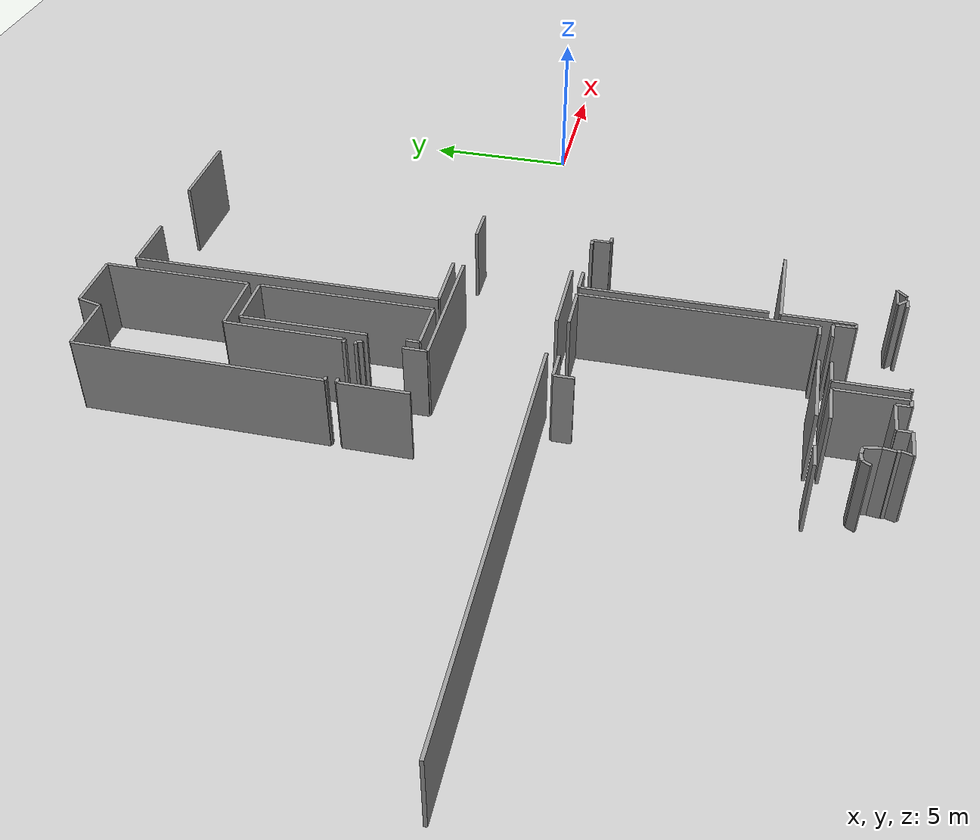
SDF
<sdf version="1.6">
 <world name="default">
  <model name="ground_plane">
   <static>1</static>
   <link name="link">
    <collision name="collision">
     <geometry><plane><normal>0 0 1</normal><size>100 100</size></plane></geometry>
     <surface><friction><ode><mu>100</mu><mu2>50</mu2></ode></friction></surface>
    </collision>
    <visual name="visual">
     <cast_shadows>0</cast_shadows>
     <geometry><plane><normal>0 0 1</normal><size>100 100</size></plane></geometry>
     <material>
      <script><uri>file://media/materials/scripts/gazebo.material</uri><name>Gazebo/Grey</name></script>
     </material>
    </visual>
   </link>
  </model>
  <model name="0510034689_Layout1">
   <static>1</static>
   <link name="Wall_89">
    <collision name="Wall_89_Collision">
     <geometry><box><size>2.1591444138 0.1 2.5</size></box></geometry>
     <pose>1.0795722069 0 1.25 0 0 0</pose>
    </collision>
    <visual name="Wall_89_Visual">
     <pose>1.0795722069 0 1.25 0 0 0</pose>
     <geometry><box><size>2.1591444138 0.1 2.5</size></box></geometry>
     <material>
      <script><uri>file://media/materials/scripts/gazebo.material</uri><name>Gazebo/Grey</name></script>
      <ambient>1 1 1 1</ambient>
     </material>
    </visual>
    <pose>39.2367038052 -11.0451030584 0 0 0 1.57079632679</pose>
   </link>
   <link name="Wall_90">
    <collision name="Wall_90_Collision">
     <geometry><box><size>0.170061336301 0.1 2.5</size></box></geometry>
     <pose>0.0850306681507 0 1.25 0 0 0</pose>
    </collision>
    <visual name="Wall_90_Visual">
     <pose>0.0850306681507 0 1.25 0 0 0</pose>
     <geometry><box><size>0.170061336301 0.1 2.5</size></box></geometry>
     <material>
      <script><uri>file://media/materials/scripts/gazebo.material</uri><name>Gazebo/Grey</name></script>
      <ambient>1 1 1 1</ambient>
     </material>
    </visual>
    <pose>39.2367038052 -8.88595864464 0 0 0 0.0</pose>
   </link>
   <link name="Wall_91">
    <collision name="Wall_91_Collision">
     <geometry><box><size>0.145186693081 0.1 2.5</size></box></geometry>
     <pose>0.0725933465406 0 1.25 0 0 0</pose>
    </collision>
    <visual name="Wall_91_Visual">
     <pose>0.0725933465406 0 1.25 0 0 0</pose>
     <geometry><box><size>0.145186693081 0.1 2.5</size></box></geometry>
     <material>
      <script><uri>file://media/materials/scripts/gazebo.material</uri><name>Gazebo/Grey</name></script>
      <ambient>1 1 1 1</ambient>
     </material>
    </visual>
    <pose>40.9882086576 -8.88595864464 0 0 0 0.0</pose>
   </link>
   <link name="Wall_92">
    <collision name="Wall_92_Collision">
     <geometry><box><size>0.189224964497 0.1 2.5</size></box></geometry>
     <pose>0.0946124822483 0 1.25 0 0 0</pose>
    </collision>
    <visual name="Wall_92_Visual">
     <pose>0.0946124822483 0 1.25 0 0 0</pose>
     <geometry><box><size>0.189224964497 0.1 2.5</size></box></geometry>
     <material>
      <script><uri>file://media/materials/scripts/gazebo.material</uri><name>Gazebo/Grey</name></script>
      <ambient>1 1 1 1</ambient>
     </material>
    </visual>
    <pose>41.1333953507 -8.88595864464 0 0 0 -1.57079632679</pose>
   </link>
   <link name="Wall_93">
    <collision name="Wall_93_Collision">
     <geometry><box><size>0.748904436951 0.1 2.5</size></box></geometry>
     <pose>0.374452218476 0 1.25 0 0 0</pose>
    </collision>
    <visual name="Wall_93_Visual">
     <pose>0.374452218476 0 1.25 0 0 0</pose>
     <geometry><box><size>0.748904436951 0.1 2.5</size></box></geometry>
     <material>
      <script><uri>file://media/materials/scripts/gazebo.material</uri><name>Gazebo/Grey</name></script>
      <ambient>1 1 1 1</ambient>
     </material>
    </visual>
    <pose>41.1333953507 -10.2720854469 0 0 0 -1.57079632679</pose>
   </link>
   <link name="Wall_94">
    <collision name="Wall_94_Collision">
     <geometry><box><size>4.41296476558 0.1 2.5</size></box></geometry>
     <pose>2.20648238279 0 1.25 0 0 0</pose>
    </collision>
    <visual name="Wall_94_Visual">
     <pose>2.20648238279 0 1.25 0 0 0</pose>
     <geometry><box><size>4.41296476558 0.1 2.5</size></box></geometry>
     <material>
      <script><uri>file://media/materials/scripts/gazebo.material</uri><name>Gazebo/Grey</name></script>
      <ambient>1 1 1 1</ambient>
     </material>
    </visual>
    <pose>41.1333953507 -11.0209898839 0 0 0 0.0</pose>
   </link>
   <link name="Wall_95">
    <collision name="Wall_95_Collision">
     <geometry><box><size>1.10209898839 0.1 2.5</size></box></geometry>
     <pose>0.551049494194 0 1.25 0 0 0</pose>
    </collision>
    <visual name="Wall_95_Visual">
     <pose>0.551049494194 0 1.25 0 0 0</pose>
     <geometry><box><size>1.10209898839 0.1 2.5</size></box></geometry>
     <material>
      <script><uri>file://media/materials/scripts/gazebo.material</uri><name>Gazebo/Grey</name></script>
      <ambient>1 1 1 1</ambient>
     </material>
    </visual>
    <pose>47.3388573655 -11.0209898839 0 0 0 0.0</pose>
   </link>
   <link name="Wall_99">
    <collision name="Wall_99_Collision">
     <geometry><box><size>2.60181153397 0.1 2.5</size></box></geometry>
     <pose>1.30090576698 0 1.25 0 0 0</pose>
    </collision>
    <visual name="Wall_99_Visual">
     <pose>1.30090576698 0 1.25 0 0 0</pose>
     <geometry><box><size>2.60181153397 0.1 2.5</size></box></geometry>
     <material>
      <script><uri>file://media/materials/scripts/gazebo.material</uri><name>Gazebo/Grey</name></script>
      <ambient>1 1 1 1</ambient>
     </material>
    </visual>
    <pose>46.0018452924 -14.4086370853 0 0 0 3.14159265359</pose>
   </link>
   <link name="Wall_100">
    <collision name="Wall_100_Collision">
     <geometry><box><size>13.6809268597 0.1 2.5</size></box></geometry>
     <pose>6.84046342983 0 1.25 0 0 0</pose>
    </collision>
    <visual name="Wall_100_Visual">
     <pose>6.84046342983 0 1.25 0 0 0</pose>
     <geometry><box><size>13.6809268597 0.1 2.5</size></box></geometry>
     <material>
      <script><uri>file://media/materials/scripts/gazebo.material</uri><name>Gazebo/Grey</name></script>
      <ambient>1 1 1 1</ambient>
     </material>
    </visual>
    <pose>41.799680437 -14.4086370853 0 0 0 3.14159265359</pose>
   </link>
   <link name="Wall_132">
    <collision name="Wall_132_Collision">
     <geometry><box><size>7.7862709737 0.1 2.5</size></box></geometry>
     <pose>3.89313548685 0 1.25 0 0 0</pose>
    </collision>
    <visual name="Wall_132_Visual">
     <pose>3.89313548685 0 1.25 0 0 0</pose>
     <geometry><box><size>7.7862709737 0.1 2.5</size></box></geometry>
     <material>
      <script><uri>file://media/materials/scripts/gazebo.material</uri><name>Gazebo/Grey</name></script>
      <ambient>1 1 1 1</ambient>
     </material>
    </visual>
    <pose>39.2476181895 -8.53479467632 0 0 0 1.57079632679</pose>
   </link>
   <link name="Wall_133">
    <collision name="Wall_133_Collision">
     <geometry><box><size>1.83704316639 0.1 2.5</size></box></geometry>
     <pose>0.918521583195 0 1.25 0 0 0</pose>
    </collision>
    <visual name="Wall_133_Visual">
     <pose>0.918521583195 0 1.25 0 0 0</pose>
     <geometry><box><size>1.83704316639 0.1 2.5</size></box></geometry>
     <material>
      <script><uri>file://media/materials/scripts/gazebo.material</uri><name>Gazebo/Grey</name></script>
      <ambient>1 1 1 1</ambient>
     </material>
    </visual>
    <pose>39.2476181895 -0.748523702616 0 0 0 0.0</pose>
   </link>
   <link name="Wall_134">
    <collision name="Wall_134_Collision">
     <geometry><box><size>0.76679223961 0.1 2.5</size></box></geometry>
     <pose>0.383396119805 0 1.25 0 0 0</pose>
    </collision>
    <visual name="Wall_134_Visual">
     <pose>0.383396119805 0 1.25 0 0 0</pose>
     <geometry><box><size>0.76679223961 0.1 2.5</size></box></geometry>
     <material>
      <script><uri>file://media/materials/scripts/gazebo.material</uri><name>Gazebo/Grey</name></script>
      <ambient>1 1 1 1</ambient>
     </material>
    </visual>
    <pose>41.0846613558 -0.748523702616 0 0 0 1.35207352482</pose>
   </link>
   <link name="Wall_135">
    <collision name="Wall_135_Collision">
     <geometry><box><size>1.873720574 0.1 2.5</size></box></geometry>
     <pose>0.936860286998 0 1.25 0 0 0</pose>
    </collision>
    <visual name="Wall_135_Visual">
     <pose>0.936860286998 0 1.25 0 0 0</pose>
     <geometry><box><size>1.873720574 0.1 2.5</size></box></geometry>
     <material>
      <script><uri>file://media/materials/scripts/gazebo.material</uri><name>Gazebo/Grey</name></script>
      <ambient>1 1 1 1</ambient>
     </material>
    </visual>
    <pose>41.2510422602 -0.0 0 0 0 0.0</pose>
   </link>
   <link name="Wall_136">
    <collision name="Wall_136_Collision">
     <geometry><box><size>4.73113175819 0.1 2.5</size></box></geometry>
     <pose>2.3655658791 0 1.25 0 0 0</pose>
    </collision>
    <visual name="Wall_136_Visual">
     <pose>2.3655658791 0 1.25 0 0 0</pose>
     <geometry><box><size>4.73113175819 0.1 2.5</size></box></geometry>
     <material>
      <script><uri>file://media/materials/scripts/gazebo.material</uri><name>Gazebo/Grey</name></script>
      <ambient>1 1 1 1</ambient>
     </material>
    </visual>
    <pose>43.1247628342 -0.0 0 0 0 -1.57079632679</pose>
   </link>
   <link name="Wall_137">
    <collision name="Wall_137_Collision">
     <geometry><box><size>1.98426044259 0.1 2.5</size></box></geometry>
     <pose>0.992130221295 0 1.25 0 0 0</pose>
    </collision>
    <visual name="Wall_137_Visual">
     <pose>0.992130221295 0 1.25 0 0 0</pose>
     <geometry><box><size>1.98426044259 0.1 2.5</size></box></geometry>
     <material>
      <script><uri>file://media/materials/scripts/gazebo.material</uri><name>Gazebo/Grey</name></script>
      <ambient>1 1 1 1</ambient>
     </material>
    </visual>
    <pose>43.1247628342 -4.73113175819 0 0 0 3.14159265359</pose>
   </link>
   <link name="Wall_138">
    <collision name="Wall_138_Collision">
     <geometry><box><size>3.78716443028 0.1 2.5</size></box></geometry>
     <pose>1.89358221514 0 1.25 0 0 0</pose>
    </collision>
    <visual name="Wall_138_Visual">
     <pose>1.89358221514 0 1.25 0 0 0</pose>
     <geometry><box><size>3.78716443028 0.1 2.5</size></box></geometry>
     <material>
      <script><uri>file://media/materials/scripts/gazebo.material</uri><name>Gazebo/Grey</name></script>
      <ambient>1 1 1 1</ambient>
     </material>
    </visual>
    <pose>41.1405023916 -4.73113175819 0 0 0 -1.57079632679</pose>
   </link>
   <link name="Wall_139">
    <collision name="Wall_139_Collision">
     <geometry><box><size>0.153562848451 0.1 2.5</size></box></geometry>
     <pose>0.0767814242256 0 1.25 0 0 0</pose>
    </collision>
    <visual name="Wall_139_Visual">
     <pose>0.0767814242256 0 1.25 0 0 0</pose>
     <geometry><box><size>0.153562848451 0.1 2.5</size></box></geometry>
     <material>
      <script><uri>file://media/materials/scripts/gazebo.material</uri><name>Gazebo/Grey</name></script>
      <ambient>1 1 1 1</ambient>
     </material>
    </visual>
    <pose>41.1405023916 -8.51829618847 0 0 0 3.14159265359</pose>
   </link>
   <link name="Wall_140">
    <collision name="Wall_140_Collision">
     <geometry><box><size>0.158863780693 0.1 2.5</size></box></geometry>
     <pose>0.0794318903467 0 1.25 0 0 0</pose>
    </collision>
    <visual name="Wall_140_Visual">
     <pose>0.0794318903467 0 1.25 0 0 0</pose>
     <geometry><box><size>0.158863780693 0.1 2.5</size></box></geometry>
     <material>
      <script><uri>file://media/materials/scripts/gazebo.material</uri><name>Gazebo/Grey</name></script>
      <ambient>1 1 1 1</ambient>
     </material>
    </visual>
    <pose>39.4056229385 -8.51829618847 0 0 0 -3.03755200988</pose>
   </link>
   <link name="Wall_141">
    <collision name="Wall_141_Collision">
     <geometry><box><size>1.63461941161 0.1 2.5</size></box></geometry>
     <pose>0.817309705807 0 1.25 0 0 0</pose>
    </collision>
    <visual name="Wall_141_Visual">
     <pose>0.817309705807 0 1.25 0 0 0</pose>
     <geometry><box><size>1.63461941161 0.1 2.5</size></box></geometry>
     <material>
      <script><uri>file://media/materials/scripts/gazebo.material</uri><name>Gazebo/Grey</name></script>
      <ambient>1 1 1 1</ambient>
     </material>
    </visual>
    <pose>41.4901434226 -10.6849283775 0 0 0 0.0</pose>
   </link>
   <link name="Wall_142">
    <collision name="Wall_142_Collision">
     <geometry><box><size>5.57598124756 0.1 2.5</size></box></geometry>
     <pose>2.78799062378 0 1.25 0 0 0</pose>
    </collision>
    <visual name="Wall_142_Visual">
     <pose>2.78799062378 0 1.25 0 0 0</pose>
     <geometry><box><size>5.57598124756 0.1 2.5</size></box></geometry>
     <material>
      <script><uri>file://media/materials/scripts/gazebo.material</uri><name>Gazebo/Grey</name></script>
      <ambient>1 1 1 1</ambient>
     </material>
    </visual>
    <pose>43.1247628342 -10.6849283775 0 0 0 1.57079632679</pose>
   </link>
   <link name="Wall_143">
    <collision name="Wall_143_Collision">
     <geometry><box><size>1.62624325624 0.1 2.5</size></box></geometry>
     <pose>0.813121628122 0 1.25 0 0 0</pose>
    </collision>
    <visual name="Wall_143_Visual">
     <pose>0.813121628122 0 1.25 0 0 0</pose>
     <geometry><box><size>1.62624325624 0.1 2.5</size></box></geometry>
     <material>
      <script><uri>file://media/materials/scripts/gazebo.material</uri><name>Gazebo/Grey</name></script>
      <ambient>1 1 1 1</ambient>
     </material>
    </visual>
    <pose>43.1247628342 -5.10894712996 0 0 0 3.14159265359</pose>
   </link>
   <link name="Wall_144">
    <collision name="Wall_144_Collision">
     <geometry><box><size>3.98540010737 0.1 2.5</size></box></geometry>
     <pose>1.99270005368 0 1.25 0 0 0</pose>
    </collision>
    <visual name="Wall_144_Visual">
     <pose>1.99270005368 0 1.25 0 0 0</pose>
     <geometry><box><size>3.98540010737 0.1 2.5</size></box></geometry>
     <material>
      <script><uri>file://media/materials/scripts/gazebo.material</uri><name>Gazebo/Grey</name></script>
      <ambient>1 1 1 1</ambient>
     </material>
    </visual>
    <pose>41.498519578 -5.10894712996 0 0 0 -1.57079632679</pose>
   </link>
   <link name="Wall_145">
    <collision name="Wall_145_Collision">
     <geometry><box><size>0.401762048257 0.1 2.5</size></box></geometry>
     <pose>0.200881024129 0 1.25 0 0 0</pose>
    </collision>
    <visual name="Wall_145_Visual">
     <pose>0.200881024129 0 1.25 0 0 0</pose>
     <geometry><box><size>0.401762048257 0.1 2.5</size></box></geometry>
     <material>
      <script><uri>file://media/materials/scripts/gazebo.material</uri><name>Gazebo/Grey</name></script>
      <ambient>1 1 1 1</ambient>
     </material>
    </visual>
    <pose>41.498519578 -10.2832536541 0 0 0 -1.59164638549</pose>
   </link>
   <link name="Wall_148">
    <collision name="Wall_148_Collision">
     <geometry><box><size>0.615520508255 0.1 2.5</size></box></geometry>
     <pose>0.307760254127 0 1.25 0 0 0</pose>
    </collision>
    <visual name="Wall_148_Visual">
     <pose>0.307760254127 0 1.25 0 0 0</pose>
     <geometry><box><size>0.615520508255 0.1 2.5</size></box></geometry>
     <material>
      <script><uri>file://media/materials/scripts/gazebo.material</uri><name>Gazebo/Grey</name></script>
      <ambient>1 1 1 1</ambient>
     </material>
    </visual>
    <pose>40.8788109921 -15.3962619503 0 0 0 1.57079632679</pose>
   </link>
   <link name="Wall_149">
    <collision name="Wall_149_Collision">
     <geometry><box><size>0.917315924467 0.1 2.5</size></box></geometry>
     <pose>0.458657962234 0 1.25 0 0 0</pose>
    </collision>
    <visual name="Wall_149_Visual">
     <pose>0.458657962234 0 1.25 0 0 0</pose>
     <geometry><box><size>0.917315924467 0.1 2.5</size></box></geometry>
     <material>
      <script><uri>file://media/materials/scripts/gazebo.material</uri><name>Gazebo/Grey</name></script>
      <ambient>1 1 1 1</ambient>
     </material>
    </visual>
    <pose>40.8788109921 -14.780741442 0 0 0 0.0</pose>
   </link>
   <link name="Wall_150">
    <collision name="Wall_150_Collision">
     <geometry><box><size>1.44640973868 0.1 2.5</size></box></geometry>
     <pose>0.723204869338 0 1.25 0 0 0</pose>
    </collision>
    <visual name="Wall_150_Visual">
     <pose>0.723204869338 0 1.25 0 0 0</pose>
     <geometry><box><size>1.44640973868 0.1 2.5</size></box></geometry>
     <material>
      <script><uri>file://media/materials/scripts/gazebo.material</uri><name>Gazebo/Grey</name></script>
      <ambient>1 1 1 1</ambient>
     </material>
    </visual>
    <pose>43.37909337 -14.780741442 0 0 0 0.0</pose>
   </link>
   <link name="Wall_151">
    <collision name="Wall_151_Collision">
     <geometry><box><size>7.3141603983 0.1 2.5</size></box></geometry>
     <pose>3.65708019915 0 1.25 0 0 0</pose>
    </collision>
    <visual name="Wall_151_Visual">
     <pose>3.65708019915 0 1.25 0 0 0</pose>
     <geometry><box><size>7.3141603983 0.1 2.5</size></box></geometry>
     <material>
      <script><uri>file://media/materials/scripts/gazebo.material</uri><name>Gazebo/Grey</name></script>
      <ambient>1 1 1 1</ambient>
     </material>
    </visual>
    <pose>44.8255031087 -14.780741442 0 0 0 -1.57079632679</pose>
   </link>
   <link name="Wall_152">
    <collision name="Wall_152_Collision">
     <geometry><box><size>0.406497358338 0.1 2.5</size></box></geometry>
     <pose>0.203248679169 0 1.25 0 0 0</pose>
    </collision>
    <visual name="Wall_152_Visual">
     <pose>0.203248679169 0 1.25 0 0 0</pose>
     <geometry><box><size>0.406497358338 0.1 2.5</size></box></geometry>
     <material>
      <script><uri>file://media/materials/scripts/gazebo.material</uri><name>Gazebo/Grey</name></script>
      <ambient>1 1 1 1</ambient>
     </material>
    </visual>
    <pose>44.8255031087 -22.0949018403 0 0 0 3.14159265359</pose>
   </link>
   <link name="Wall_153">
    <collision name="Wall_153_Collision">
     <geometry><box><size>2.42984652599 0.1 2.5</size></box></geometry>
     <pose>1.21492326299 0 1.25 0 0 0</pose>
    </collision>
    <visual name="Wall_153_Visual">
     <pose>1.21492326299 0 1.25 0 0 0</pose>
     <geometry><box><size>2.42984652599 0.1 2.5</size></box></geometry>
     <material>
      <script><uri>file://media/materials/scripts/gazebo.material</uri><name>Gazebo/Grey</name></script>
      <ambient>1 1 1 1</ambient>
     </material>
    </visual>
    <pose>43.2166467204 -22.0949018403 0 0 0 3.14159265359</pose>
   </link>
   <link name="Wall_154">
    <collision name="Wall_154_Collision">
     <geometry><box><size>0.765197768345 0.1 2.5</size></box></geometry>
     <pose>0.382598884173 0 1.25 0 0 0</pose>
    </collision>
    <visual name="Wall_154_Visual">
     <pose>0.382598884173 0 1.25 0 0 0</pose>
     <geometry><box><size>0.765197768345 0.1 2.5</size></box></geometry>
     <material>
      <script><uri>file://media/materials/scripts/gazebo.material</uri><name>Gazebo/Grey</name></script>
      <ambient>1 1 1 1</ambient>
     </material>
    </visual>
    <pose>39.5713692857 -22.0949018403 0 0 0 -3.13031431278</pose>
   </link>
   <link name="Wall_157">
    <collision name="Wall_157_Collision">
     <geometry><box><size>1.2555349254 0.1 2.5</size></box></geometry>
     <pose>0.627767462698 0 1.25 0 0 0</pose>
    </collision>
    <visual name="Wall_157_Visual">
     <pose>0.627767462698 0 1.25 0 0 0</pose>
     <geometry><box><size>1.2555349254 0.1 2.5</size></box></geometry>
     <material>
      <script><uri>file://media/materials/scripts/gazebo.material</uri><name>Gazebo/Grey</name></script>
      <ambient>1 1 1 1</ambient>
     </material>
    </visual>
    <pose>40.7520264585 -22.4717019206 0 0 0 0.0</pose>
   </link>
   <link name="Wall_158">
    <collision name="Wall_158_Collision">
     <geometry><box><size>2.17868877633 0.1 2.5</size></box></geometry>
     <pose>1.08934438817 0 1.25 0 0 0</pose>
    </collision>
    <visual name="Wall_158_Visual">
     <pose>1.08934438817 0 1.25 0 0 0</pose>
     <geometry><box><size>2.17868877633 0.1 2.5</size></box></geometry>
     <material>
      <script><uri>file://media/materials/scripts/gazebo.material</uri><name>Gazebo/Grey</name></script>
      <ambient>1 1 1 1</ambient>
     </material>
    </visual>
    <pose>42.0075613839 -22.4717019206 0 0 0 -1.57079632679</pose>
   </link>
   <link name="Wall_159">
    <collision name="Wall_159_Collision">
     <geometry><box><size>0.276540038657 0.1 2.5</size></box></geometry>
     <pose>0.138270019329 0 1.25 0 0 0</pose>
    </collision>
    <visual name="Wall_159_Visual">
     <pose>0.138270019329 0 1.25 0 0 0</pose>
     <geometry><box><size>0.276540038657 0.1 2.5</size></box></geometry>
     <material>
      <script><uri>file://media/materials/scripts/gazebo.material</uri><name>Gazebo/Grey</name></script>
      <ambient>1 1 1 1</ambient>
     </material>
    </visual>
    <pose>42.0075613839 -24.6503906969 0 0 0 3.14159265359</pose>
   </link>
   <link name="Wall_160">
    <collision name="Wall_160_Collision">
     <geometry><box><size>0.434671699129 0.1 2.5</size></box></geometry>
     <pose>0.217335849564 0 1.25 0 0 0</pose>
    </collision>
    <visual name="Wall_160_Visual">
     <pose>0.217335849564 0 1.25 0 0 0</pose>
     <geometry><box><size>0.434671699129 0.1 2.5</size></box></geometry>
     <material>
      <script><uri>file://media/materials/scripts/gazebo.material</uri><name>Gazebo/Grey</name></script>
      <ambient>1 1 1 1</ambient>
     </material>
    </visual>
    <pose>41.7310213452 -24.6503906969 0 0 0 1.57079632679</pose>
   </link>
   <link name="Wall_161">
    <collision name="Wall_161_Collision">
     <geometry><box><size>1.06275644044 0.1 2.5</size></box></geometry>
     <pose>0.531378220219 0 1.25 0 0 0</pose>
    </collision>
    <visual name="Wall_161_Visual">
     <pose>0.531378220219 0 1.25 0 0 0</pose>
     <geometry><box><size>1.06275644044 0.1 2.5</size></box></geometry>
     <material>
      <script><uri>file://media/materials/scripts/gazebo.material</uri><name>Gazebo/Grey</name></script>
      <ambient>1 1 1 1</ambient>
     </material>
    </visual>
    <pose>41.7310213452 -24.2157189978 0 0 0 3.14159265359</pose>
   </link>
   <link name="Wall_162">
    <collision name="Wall_162_Collision">
     <geometry><box><size>0.434164053348 0.1 2.5</size></box></geometry>
     <pose>0.217082026674 0 1.25 0 0 0</pose>
    </collision>
    <visual name="Wall_162_Visual">
     <pose>0.217082026674 0 1.25 0 0 0</pose>
     <geometry><box><size>0.434164053348 0.1 2.5</size></box></geometry>
     <material>
      <script><uri>file://media/materials/scripts/gazebo.material</uri><name>Gazebo/Grey</name></script>
      <ambient>1 1 1 1</ambient>
     </material>
    </visual>
    <pose>40.6682649048 -24.2157189978 0 0 0 -1.57079632679</pose>
   </link>
   <link name="Wall_163">
    <collision name="Wall_163_Collision">
     <geometry><box><size>0.917950481692 0.1 2.5</size></box></geometry>
     <pose>0.458975240846 0 1.25 0 0 0</pose>
    </collision>
    <visual name="Wall_163_Visual">
     <pose>0.458975240846 0 1.25 0 0 0</pose>
     <geometry><box><size>0.917950481692 0.1 2.5</size></box></geometry>
     <material>
      <script><uri>file://media/materials/scripts/gazebo.material</uri><name>Gazebo/Grey</name></script>
      <ambient>1 1 1 1</ambient>
     </material>
    </visual>
    <pose>40.6682649048 -24.6498830511 0 0 0 3.14159265359</pose>
   </link>
   <link name="Wall_164">
    <collision name="Wall_164_Collision">
     <geometry><box><size>0.342252308572 0.1 2.5</size></box></geometry>
     <pose>0.171126154286 0 1.25 0 0 0</pose>
    </collision>
    <visual name="Wall_164_Visual">
     <pose>0.171126154286 0 1.25 0 0 0</pose>
     <geometry><box><size>0.342252308572 0.1 2.5</size></box></geometry>
     <material>
      <script><uri>file://media/materials/scripts/gazebo.material</uri><name>Gazebo/Grey</name></script>
      <ambient>1 1 1 1</ambient>
     </material>
    </visual>
    <pose>39.7503144231 -24.6498830511 0 0 0 1.27543260849</pose>
   </link>
   <link name="Wall_165">
    <collision name="Wall_165_Collision">
     <geometry><box><size>0.121439399208 0.1 2.5</size></box></geometry>
     <pose>0.0607196996038 0 1.25 0 0 0</pose>
    </collision>
    <visual name="Wall_165_Visual">
     <pose>0.0607196996038 0 1.25 0 0 0</pose>
     <geometry><box><size>0.121439399208 0.1 2.5</size></box></geometry>
     <material>
      <script><uri>file://media/materials/scripts/gazebo.material</uri><name>Gazebo/Grey</name></script>
      <ambient>1 1 1 1</ambient>
     </material>
    </visual>
    <pose>39.8499399074 -24.322451523 0 0 0 1.86775857115</pose>
   </link>
   <link name="Wall_166">
    <collision name="Wall_166_Collision">
     <geometry><box><size>0.376443092883 0.1 2.5</size></box></geometry>
     <pose>0.188221546441 0 1.25 0 0 0</pose>
    </collision>
    <visual name="Wall_166_Visual">
     <pose>0.188221546441 0 1.25 0 0 0</pose>
     <geometry><box><size>0.376443092883 0.1 2.5</size></box></geometry>
     <material>
      <script><uri>file://media/materials/scripts/gazebo.material</uri><name>Gazebo/Grey</name></script>
      <ambient>1 1 1 1</ambient>
     </material>
    </visual>
    <pose>39.8144047028 -24.2063275508 0 0 0 1.42565717427</pose>
   </link>
   <link name="Wall_167">
    <collision name="Wall_167_Collision">
     <geometry><box><size>0.503839012071 0.1 2.5</size></box></geometry>
     <pose>0.251919506035 0 1.25 0 0 0</pose>
    </collision>
    <visual name="Wall_167_Visual">
     <pose>0.251919506035 0 1.25 0 0 0</pose>
     <geometry><box><size>0.503839012071 0.1 2.5</size></box></geometry>
     <material>
      <script><uri>file://media/materials/scripts/gazebo.material</uri><name>Gazebo/Grey</name></script>
      <ambient>1 1 1 1</ambient>
     </material>
    </visual>
    <pose>39.8688497127 -23.8338424597 0 0 0 1.75060476733</pose>
   </link>
   <link name="Wall_168">
    <collision name="Wall_168_Collision">
     <geometry><box><size>0.25086210092 0.1 2.5</size></box></geometry>
     <pose>0.12543105046 0 1.25 0 0 0</pose>
    </collision>
    <visual name="Wall_168_Visual">
     <pose>0.12543105046 0 1.25 0 0 0</pose>
     <geometry><box><size>0.25086210092 0.1 2.5</size></box></geometry>
     <material>
      <script><uri>file://media/materials/scripts/gazebo.material</uri><name>Gazebo/Grey</name></script>
      <ambient>1 1 1 1</ambient>
     </material>
    </visual>
    <pose>39.7787425868 -23.3381263556 0 0 0 2.91244283156</pose>
   </link>
   <link name="Wall_169">
    <collision name="Wall_169_Collision">
     <geometry><box><size>0.268712141257 0.1 2.5</size></box></geometry>
     <pose>0.134356070629 0 1.25 0 0 0</pose>
    </collision>
    <visual name="Wall_169_Visual">
     <pose>0.134356070629 0 1.25 0 0 0</pose>
     <geometry><box><size>0.268712141257 0.1 2.5</size></box></geometry>
     <material>
      <script><uri>file://media/materials/scripts/gazebo.material</uri><name>Gazebo/Grey</name></script>
      <ambient>1 1 1 1</ambient>
     </material>
    </visual>
    <pose>39.5344380552 -23.2811431168 0 0 0 -3.07068898446</pose>
   </link>
   <link name="Wall_170">
    <collision name="Wall_170_Collision">
     <geometry><box><size>0.283930855846 0.1 2.5</size></box></geometry>
     <pose>0.141965427923 0 1.25 0 0 0</pose>
    </collision>
    <visual name="Wall_170_Visual">
     <pose>0.141965427923 0 1.25 0 0 0</pose>
     <geometry><box><size>0.283930855846 0.1 2.5</size></box></geometry>
     <material>
      <script><uri>file://media/materials/scripts/gazebo.material</uri><name>Gazebo/Grey</name></script>
      <ambient>1 1 1 1</ambient>
     </material>
    </visual>
    <pose>39.2664010833 -23.3001798335 0 0 0 -2.10546656117</pose>
   </link>
   <link name="Wall_176">
    <collision name="Wall_176_Collision">
     <geometry><box><size>2.19023771783 0.1 2.5</size></box></geometry>
     <pose>1.09511885891 0 1.25 0 0 0</pose>
    </collision>
    <visual name="Wall_176_Visual">
     <pose>1.09511885891 0 1.25 0 0 0</pose>
     <geometry><box><size>2.19023771783 0.1 2.5</size></box></geometry>
     <material>
      <script><uri>file://media/materials/scripts/gazebo.material</uri><name>Gazebo/Grey</name></script>
      <ambient>1 1 1 1</ambient>
     </material>
    </visual>
    <pose>42.3682437106 -24.6576246492 0 0 0 1.57079632679</pose>
   </link>
   <link name="Wall_177">
    <collision name="Wall_177_Collision">
     <geometry><box><size>0.856144607977 0.1 2.5</size></box></geometry>
     <pose>0.428072303988 0 1.25 0 0 0</pose>
    </collision>
    <visual name="Wall_177_Visual">
     <pose>0.428072303988 0 1.25 0 0 0</pose>
     <geometry><box><size>0.856144607977 0.1 2.5</size></box></geometry>
     <material>
      <script><uri>file://media/materials/scripts/gazebo.material</uri><name>Gazebo/Grey</name></script>
      <ambient>1 1 1 1</ambient>
     </material>
    </visual>
    <pose>42.3682437106 -22.4673869314 0 0 0 0.0</pose>
   </link>
   <link name="Wall_178">
    <collision name="Wall_178_Collision">
     <geometry><box><size>0.586838521685 0.1 2.5</size></box></geometry>
     <pose>0.293419260842 0 1.25 0 0 0</pose>
    </collision>
    <visual name="Wall_178_Visual">
     <pose>0.293419260842 0 1.25 0 0 0</pose>
     <geometry><box><size>0.586838521685 0.1 2.5</size></box></geometry>
     <material>
      <script><uri>file://media/materials/scripts/gazebo.material</uri><name>Gazebo/Grey</name></script>
      <ambient>1 1 1 1</ambient>
     </material>
    </visual>
    <pose>44.4046647571 -22.4673869314 0 0 0 0.0</pose>
   </link>
   <link name="Wall_179">
    <collision name="Wall_179_Collision">
     <geometry><box><size>0.672376835615 0.1 2.5</size></box></geometry>
     <pose>0.336188417808 0 1.25 0 0 0</pose>
    </collision>
    <visual name="Wall_179_Visual">
     <pose>0.336188417808 0 1.25 0 0 0</pose>
     <geometry><box><size>0.672376835615 0.1 2.5</size></box></geometry>
     <material>
      <script><uri>file://media/materials/scripts/gazebo.material</uri><name>Gazebo/Grey</name></script>
      <ambient>1 1 1 1</ambient>
     </material>
    </visual>
    <pose>44.9915032788 -22.4673869314 0 0 0 -1.57079632679</pose>
   </link>
   <link name="Wall_180">
    <collision name="Wall_180_Collision">
     <geometry><box><size>0.167015461621 0.1 2.5</size></box></geometry>
     <pose>0.0835077308107 0 1.25 0 0 0</pose>
    </collision>
    <visual name="Wall_180_Visual">
     <pose>0.0835077308107 0 1.25 0 0 0</pose>
     <geometry><box><size>0.167015461621 0.1 2.5</size></box></geometry>
     <material>
      <script><uri>file://media/materials/scripts/gazebo.material</uri><name>Gazebo/Grey</name></script>
      <ambient>1 1 1 1</ambient>
     </material>
    </visual>
    <pose>44.9915032788 -23.139763767 0 0 0 0.0</pose>
   </link>
   <link name="Wall_181">
    <collision name="Wall_181_Collision">
     <geometry><box><size>2.20902061169 0.1 2.5</size></box></geometry>
     <pose>1.10451030584 0 1.25 0 0 0</pose>
    </collision>
    <visual name="Wall_181_Visual">
     <pose>1.10451030584 0 1.25 0 0 0</pose>
     <geometry><box><size>2.20902061169 0.1 2.5</size></box></geometry>
     <material>
      <script><uri>file://media/materials/scripts/gazebo.material</uri><name>Gazebo/Grey</name></script>
      <ambient>1 1 1 1</ambient>
     </material>
    </visual>
    <pose>45.1585187404 -23.139763767 0 0 0 1.57079632679</pose>
   </link>
   <link name="Wall_182">
    <collision name="Wall_182_Collision">
     <geometry><box><size>2.93228893675 0.1 2.5</size></box></geometry>
     <pose>1.46614446837 0 1.25 0 0 0</pose>
    </collision>
    <visual name="Wall_182_Visual">
     <pose>1.46614446837 0 1.25 0 0 0</pose>
     <geometry><box><size>2.93228893675 0.1 2.5</size></box></geometry>
     <material>
      <script><uri>file://media/materials/scripts/gazebo.material</uri><name>Gazebo/Grey</name></script>
      <ambient>1 1 1 1</ambient>
     </material>
    </visual>
    <pose>45.1585187404 -20.9307431553 0 0 0 0.0</pose>
   </link>
   <link name="Wall_185">
    <collision name="Wall_185_Collision">
     <geometry><box><size>0.388050499173 0.1 2.5</size></box></geometry>
     <pose>0.194025249587 0 1.25 0 0 0</pose>
    </collision>
    <visual name="Wall_185_Visual">
     <pose>0.194025249587 0 1.25 0 0 0</pose>
     <geometry><box><size>0.388050499173 0.1 2.5</size></box></geometry>
     <material>
      <script><uri>file://media/materials/scripts/gazebo.material</uri><name>Gazebo/Grey</name></script>
      <ambient>1 1 1 1</ambient>
     </material>
    </visual>
    <pose>46.8951749538 -24.6521674571 0 0 0 0.794186096278</pose>
   </link>
   <link name="Wall_186">
    <collision name="Wall_186_Collision">
     <geometry><box><size>0.729994631646 0.1 2.5</size></box></geometry>
     <pose>0.364997315823 0 1.25 0 0 0</pose>
    </collision>
    <visual name="Wall_186_Visual">
     <pose>0.364997315823 0 1.25 0 0 0</pose>
     <geometry><box><size>0.729994631646 0.1 2.5</size></box></geometry>
     <material>
      <script><uri>file://media/materials/scripts/gazebo.material</uri><name>Gazebo/Grey</name></script>
      <ambient>1 1 1 1</ambient>
     </material>
    </visual>
    <pose>47.1671461804 -24.3753735956 0 0 0 3.14159265359</pose>
   </link>
   <link name="Wall_187">
    <collision name="Wall_187_Collision">
     <geometry><box><size>0.394896233706 0.1 2.5</size></box></geometry>
     <pose>0.197448116853 0 1.25 0 0 0</pose>
    </collision>
    <visual name="Wall_187_Visual">
     <pose>0.197448116853 0 1.25 0 0 0</pose>
     <geometry><box><size>0.394896233706 0.1 2.5</size></box></geometry>
     <material>
      <script><uri>file://media/materials/scripts/gazebo.material</uri><name>Gazebo/Grey</name></script>
      <ambient>1 1 1 1</ambient>
     </material>
    </visual>
    <pose>46.4371515488 -24.3753735956 0 0 0 -0.81108017187</pose>
   </link>
   <link name="Wall_188">
    <collision name="Wall_188_Collision">
     <geometry><box><size>0.348245005083 0.1 2.5</size></box></geometry>
     <pose>0.174122502541 0 1.25 0 0 0</pose>
    </collision>
    <visual name="Wall_188_Visual">
     <pose>0.174122502541 0 1.25 0 0 0</pose>
     <geometry><box><size>0.348245005083 0.1 2.5</size></box></geometry>
     <material>
      <script><uri>file://media/materials/scripts/gazebo.material</uri><name>Gazebo/Grey</name></script>
      <ambient>1 1 1 1</ambient>
     </material>
    </visual>
    <pose>46.7091227754 -24.6616858155 0 0 0 3.14159265359</pose>
   </link>
   <link name="Wall_189">
    <collision name="Wall_189_Collision">
     <geometry><box><size>0.120761091533 0.1 2.5</size></box></geometry>
     <pose>0.0603805457664 0 1.25 0 0 0</pose>
    </collision>
    <visual name="Wall_189_Visual">
     <pose>0.0603805457664 0 1.25 0 0 0</pose>
     <geometry><box><size>0.120761091533 0.1 2.5</size></box></geometry>
     <material>
      <script><uri>file://media/materials/scripts/gazebo.material</uri><name>Gazebo/Grey</name></script>
      <ambient>1 1 1 1</ambient>
     </material>
    </visual>
    <pose>42.4889364948 -24.6616858155 0 0 0 3.10795655374</pose>
   </link>
   <link name="Wall_190">
    <collision name="Wall_190_Collision">
     <geometry><box><size>5.80404111423 0.1 2.5</size></box></geometry>
     <pose>2.90202055712 0 1.25 0 0 0</pose>
    </collision>
    <visual name="Wall_190_Visual">
     <pose>2.90202055712 0 1.25 0 0 0</pose>
     <geometry><box><size>5.80404111423 0.1 2.5</size></box></geometry>
     <material>
      <script><uri>file://media/materials/scripts/gazebo.material</uri><name>Gazebo/Grey</name></script>
      <ambient>1 1 1 1</ambient>
     </material>
    </visual>
    <pose>45.1916426275 -20.5797060985 0 0 0 1.57079632679</pose>
   </link>
   <link name="Wall_191">
    <collision name="Wall_191_Collision">
     <geometry><box><size>0.799922837841 0.1 2.5</size></box></geometry>
     <pose>0.399961418921 0 1.25 0 0 0</pose>
    </collision>
    <visual name="Wall_191_Visual">
     <pose>0.399961418921 0 1.25 0 0 0</pose>
     <geometry><box><size>0.799922837841 0.1 2.5</size></box></geometry>
     <material>
      <script><uri>file://media/materials/scripts/gazebo.material</uri><name>Gazebo/Grey</name></script>
      <ambient>1 1 1 1</ambient>
     </material>
    </visual>
    <pose>45.1916426275 -14.7756649842 0 0 0 0.0</pose>
   </link>
   <link name="Wall_192">
    <collision name="Wall_192_Collision">
     <geometry><box><size>0.239481896717 0.1 2.5</size></box></geometry>
     <pose>0.119740948358 0 1.25 0 0 0</pose>
    </collision>
    <visual name="Wall_192_Visual">
     <pose>0.119740948358 0 1.25 0 0 0</pose>
     <geometry><box><size>0.239481896717 0.1 2.5</size></box></geometry>
     <material>
      <script><uri>file://media/materials/scripts/gazebo.material</uri><name>Gazebo/Grey</name></script>
      <ambient>1 1 1 1</ambient>
     </material>
    </visual>
    <pose>47.5862077718 -14.7756649842 0 0 0 0.0</pose>
   </link>
   <link name="Wall_193">
    <collision name="Wall_193_Collision">
     <geometry><box><size>0.59407247405 0.1 2.5</size></box></geometry>
     <pose>0.297036237025 0 1.25 0 0 0</pose>
    </collision>
    <visual name="Wall_193_Visual">
     <pose>0.297036237025 0 1.25 0 0 0</pose>
     <geometry><box><size>0.59407247405 0.1 2.5</size></box></geometry>
     <material>
      <script><uri>file://media/materials/scripts/gazebo.material</uri><name>Gazebo/Grey</name></script>
      <ambient>1 1 1 1</ambient>
     </material>
    </visual>
    <pose>47.8256896685 -14.7756649842 0 0 0 -1.57079632679</pose>
   </link>
   <link name="Wall_194">
    <collision name="Wall_194_Collision">
     <geometry><box><size>0.275778569987 0.1 2.5</size></box></geometry>
     <pose>0.137889284994 0 1.25 0 0 0</pose>
    </collision>
    <visual name="Wall_194_Visual">
     <pose>0.137889284994 0 1.25 0 0 0</pose>
     <geometry><box><size>0.275778569987 0.1 2.5</size></box></geometry>
     <material>
      <script><uri>file://media/materials/scripts/gazebo.material</uri><name>Gazebo/Grey</name></script>
      <ambient>1 1 1 1</ambient>
     </material>
    </visual>
    <pose>47.8256896685 -15.3697374583 0 0 0 0.0</pose>
   </link>
   <link name="Wall_197">
    <collision name="Wall_197_Collision">
     <geometry><box><size>9.94490774173 0.1 2.5</size></box></geometry>
     <pose>4.97245387086 0 1.25 0 0 0</pose>
    </collision>
    <visual name="Wall_197_Visual">
     <pose>4.97245387086 0 1.25 0 0 0</pose>
     <geometry><box><size>9.94490774173 0.1 2.5</size></box></geometry>
     <material>
      <script><uri>file://media/materials/scripts/gazebo.material</uri><name>Gazebo/Grey</name></script>
      <ambient>1 1 1 1</ambient>
     </material>
    </visual>
    <pose>43.634058463 -10.7039650943 0 0 0 1.57079632679</pose>
   </link>
   <link name="Wall_198">
    <collision name="Wall_198_Collision">
     <geometry><box><size>1.86344074695 0.1 2.5</size></box></geometry>
     <pose>0.931720373475 0 1.25 0 0 0</pose>
    </collision>
    <visual name="Wall_198_Visual">
     <pose>0.931720373475 0 1.25 0 0 0</pose>
     <geometry><box><size>1.86344074695 0.1 2.5</size></box></geometry>
     <material>
      <script><uri>file://media/materials/scripts/gazebo.material</uri><name>Gazebo/Grey</name></script>
      <ambient>1 1 1 1</ambient>
     </material>
    </visual>
    <pose>43.634058463 -0.759057352551 0 0 0 0.0</pose>
   </link>
   <link name="Wall_199">
    <collision name="Wall_199_Collision">
     <geometry><box><size>2.73214958798 0.1 2.5</size></box></geometry>
     <pose>1.36607479399 0 1.25 0 0 0</pose>
    </collision>
    <visual name="Wall_199_Visual">
     <pose>1.36607479399 0 1.25 0 0 0</pose>
     <geometry><box><size>2.73214958798 0.1 2.5</size></box></geometry>
     <material>
      <script><uri>file://media/materials/scripts/gazebo.material</uri><name>Gazebo/Grey</name></script>
      <ambient>1 1 1 1</ambient>
     </material>
    </visual>
    <pose>47.7723868616 -0.759057352551 0 0 0 0.0</pose>
   </link>
   <link name="Wall_208">
    <collision name="Wall_208_Collision">
     <geometry><box><size>1.94268250069 0.1 2.5</size></box></geometry>
     <pose>0.971341250343 0 1.25 0 0 0</pose>
    </collision>
    <visual name="Wall_208_Visual">
     <pose>0.971341250343 0 1.25 0 0 0</pose>
     <geometry><box><size>1.94268250069 0.1 2.5</size></box></geometry>
     <material>
      <script><uri>file://media/materials/scripts/gazebo.material</uri><name>Gazebo/Grey</name></script>
      <ambient>1 1 1 1</ambient>
     </material>
    </visual>
    <pose>45.5765650402 -10.6778213366 0 0 0 -3.1281346918</pose>
   </link>
   <pose>-56.4 12.3396063334 0 0 0 0</pose>
  </model>
 </world>
</sdf>
